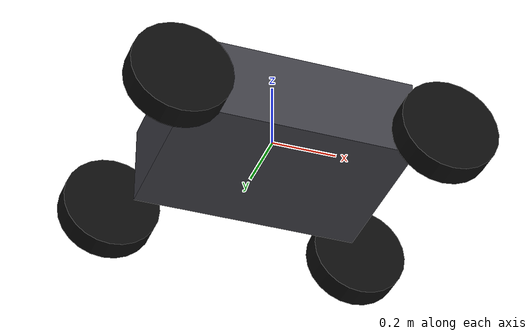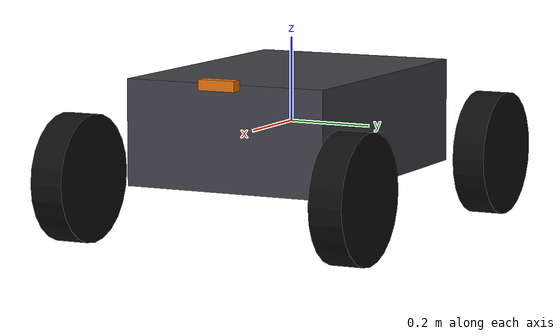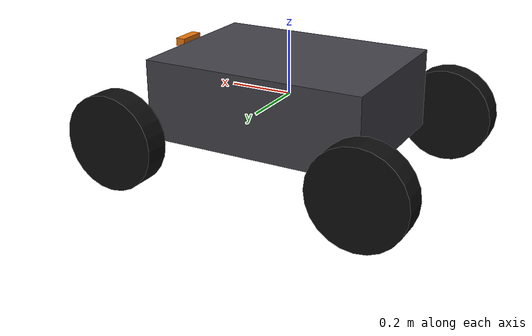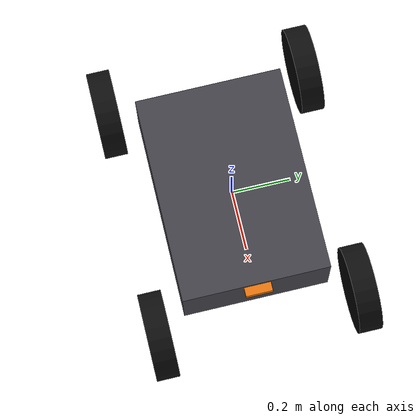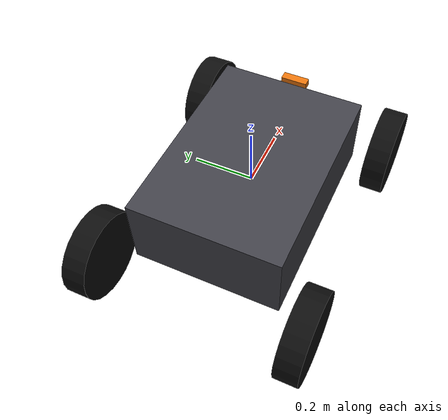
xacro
<?xml version="1.0"?>
<robot name="sih_rover" xmlns:xacro="http://www.ros.org/wiki/xacro">

  <xacro:arg name="camera_width" default="1280"/>
  <xacro:arg name="camera_height" default="720"/>
  <xacro:arg name="camera_fps" default="30"/>

  <xacro:property name="wheelbase" value="0.80"/>
  <xacro:property name="track" value="0.70"/>
  <xacro:property name="wheel_radius" value="0.15"/>
  <xacro:property name="wheel_width" value="0.08"/>
  <xacro:property name="chassis_len" value="0.70"/>
  <xacro:property name="chassis_wid" value="0.50"/>
  <xacro:property name="chassis_hgt" value="0.25"/>
  <xacro:property name="chassis_z" value="${wheel_radius + chassis_hgt/2.0 - 0.02}"/>
  <xacro:property name="mass" value="60.0"/>
  <xacro:property name="wheel_mu" value="0.55"/>

  <material name="chassis_grey">
    <color rgba="0.25 0.25 0.28 1.0"/>
  </material>
  <material name="wheel_black">
    <color rgba="0.05 0.05 0.05 1.0"/>
  </material>
  <material name="sensor_orange">
    <color rgba="0.9 0.45 0.05 1.0"/>
  </material>

  <!-- ================= base_link / chassis ================= -->
  <link name="base_link">
    <inertial>
      <mass value="${mass}"/>
      <origin xyz="0 0 0" rpy="0 0 0"/>
      <inertia
        ixx="${(mass/12.0)*(chassis_wid*chassis_wid + chassis_hgt*chassis_hgt)}" ixy="0" ixz="0"
        iyy="${(mass/12.0)*(chassis_len*chassis_len + chassis_hgt*chassis_hgt)}" iyz="0"
        izz="${(mass/12.0)*(chassis_len*chassis_len + chassis_wid*chassis_wid)}"/>
    </inertial>
    <visual>
      <origin xyz="0 0 0" rpy="0 0 0"/>
      <geometry>
        <box size="${chassis_len} ${chassis_wid} ${chassis_hgt}"/>
      </geometry>
      <material name="chassis_grey"/>
    </visual>
    <collision>
      <origin xyz="0 0 0" rpy="0 0 0"/>
      <geometry>
        <box size="${chassis_len} ${chassis_wid} ${chassis_hgt}"/>
      </geometry>
    </collision>
  </link>

  <!-- ================= wheels ================= -->
  <xacro:macro name="wheel" params="prefix x_off y_off">
    <link name="wheel_${prefix}_link">
      <inertial>
        <mass value="3.0"/>
        <origin xyz="0 0 0" rpy="0 0 0"/>
        <inertia
          ixx="${(3.0/12.0)*(3*wheel_radius*wheel_radius + wheel_width*wheel_width)}" ixy="0" ixz="0"
          iyy="${(3.0/12.0)*(3*wheel_radius*wheel_radius + wheel_width*wheel_width)}" iyz="0"
          izz="${0.5*3.0*wheel_radius*wheel_radius}"/>
      </inertial>
      <visual>
        <origin xyz="0 0 0" rpy="1.5707963267948966 0 0"/>
        <geometry>
          <cylinder radius="${wheel_radius}" length="${wheel_width}"/>
        </geometry>
        <material name="wheel_black"/>
      </visual>
      <collision>
        <origin xyz="0 0 0" rpy="1.5707963267948966 0 0"/>
        <geometry>
          <cylinder radius="${wheel_radius}" length="${wheel_width}"/>
        </geometry>
      </collision>
    </link>

    <joint name="wheel_${prefix}_joint" type="continuous">
      <parent link="base_link"/>
      <child link="wheel_${prefix}_link"/>
      <origin xyz="${x_off} ${y_off} ${-(chassis_z - wheel_radius)}" rpy="0 0 0"/>
      <axis xyz="0 1 0"/>
    </joint>

    <gazebo reference="wheel_${prefix}_link">
      <mu1>${wheel_mu}</mu1>
      <mu2>${wheel_mu}</mu2>
    </gazebo>
  </xacro:macro>

  <xacro:wheel prefix="fl" x_off="${wheelbase/2.0}"  y_off="${track/2.0}"/>
  <xacro:wheel prefix="fr" x_off="${wheelbase/2.0}"  y_off="${-track/2.0}"/>
  <xacro:wheel prefix="rl" x_off="${-wheelbase/2.0}" y_off="${track/2.0}"/>
  <xacro:wheel prefix="rr" x_off="${-wheelbase/2.0}" y_off="${-track/2.0}"/>

  <!-- ================= IMU ================= -->
  <link name="imu_link">
    <inertial>
      <mass value="0.05"/>
      <inertia ixx="1e-6" ixy="0" ixz="0" iyy="1e-6" iyz="0" izz="1e-6"/>
    </inertial>
  </link>
  <joint name="imu_joint" type="fixed">
    <parent link="base_link"/>
    <child link="imu_link"/>
    <origin xyz="0 0 ${chassis_hgt/2.0 - 0.02}" rpy="0 0 0"/>
  </joint>

  <link name="camera_link">
    <inertial>
      <mass value="0.15"/>
      <inertia ixx="1e-6" ixy="0" ixz="0" iyy="1e-6" iyz="0" izz="1e-6"/>
    </inertial>
    <visual>
      <geometry>
        <box size="0.03 0.09 0.025"/>
      </geometry>
      <material name="sensor_orange"/>
    </visual>
  </link>
  <joint name="camera_joint" type="fixed">
    <parent link="base_link"/>
    <child link="camera_link"/>
    <origin xyz="${chassis_len/2.0 + 0.02} 0 ${chassis_hgt/2.0}" rpy="0 0 0"/>
  </joint>

  <link name="camera_optical_frame">
    <inertial>
      <mass value="0.001"/>
      <inertia ixx="1e-9" ixy="0" ixz="0" iyy="1e-9" iyz="0" izz="1e-9"/>
    </inertial>
  </link>
  <joint name="camera_optical_joint" type="fixed">
    <parent link="camera_link"/>
    <child link="camera_optical_frame"/>
    <!-- body (x fwd,y left,z up) -> optical (z fwd,x right,y down) -->
    <origin xyz="0 0 0" rpy="-1.5707963267948966 0 -1.5707963267948966"/>
  </joint>

  <link name="base_link_gt">
    <inertial>
      <mass value="0.001"/>
      <inertia ixx="1e-9" ixy="0" ixz="0" iyy="1e-9" iyz="0" izz="1e-9"/>
    </inertial>
  </link>
  <joint name="base_link_gt_joint" type="fixed">
    <parent link="base_link"/>
    <child link="base_link_gt"/>
    <origin xyz="0 0 0" rpy="0 0 0"/>
  </joint>

  <xacro:include filename="$(find sih_description)/urdf/sih_rover.gazebo.xacro"/>

</robot>
